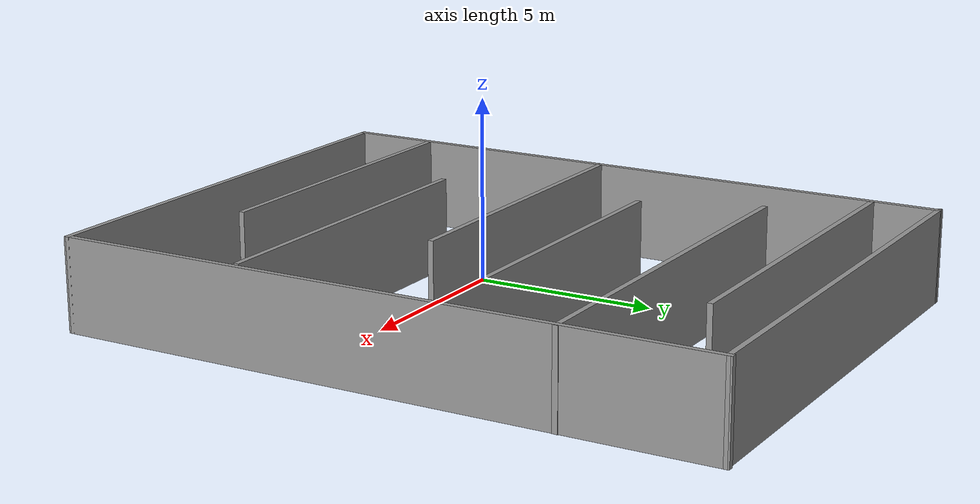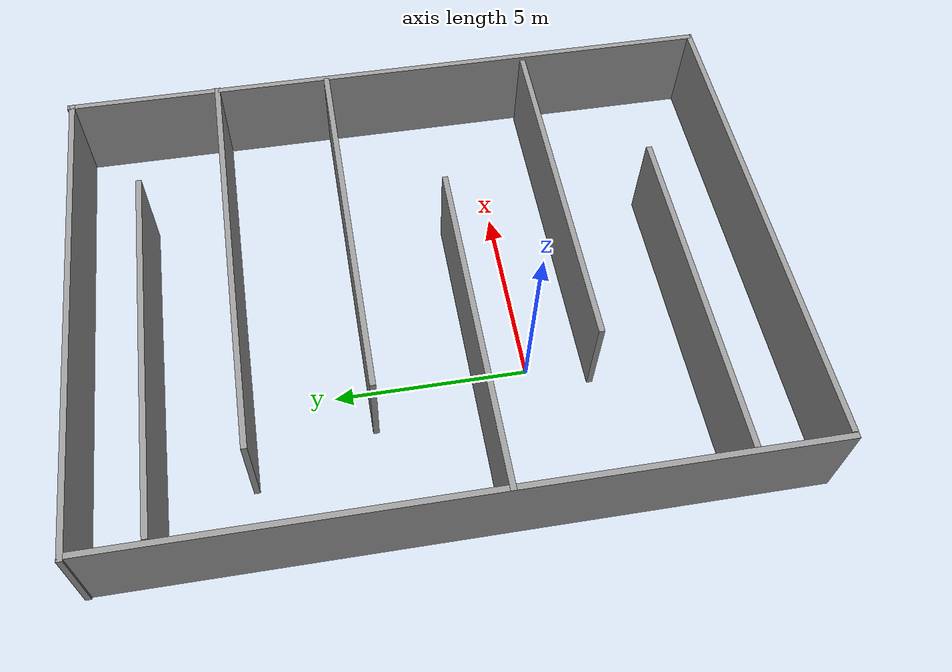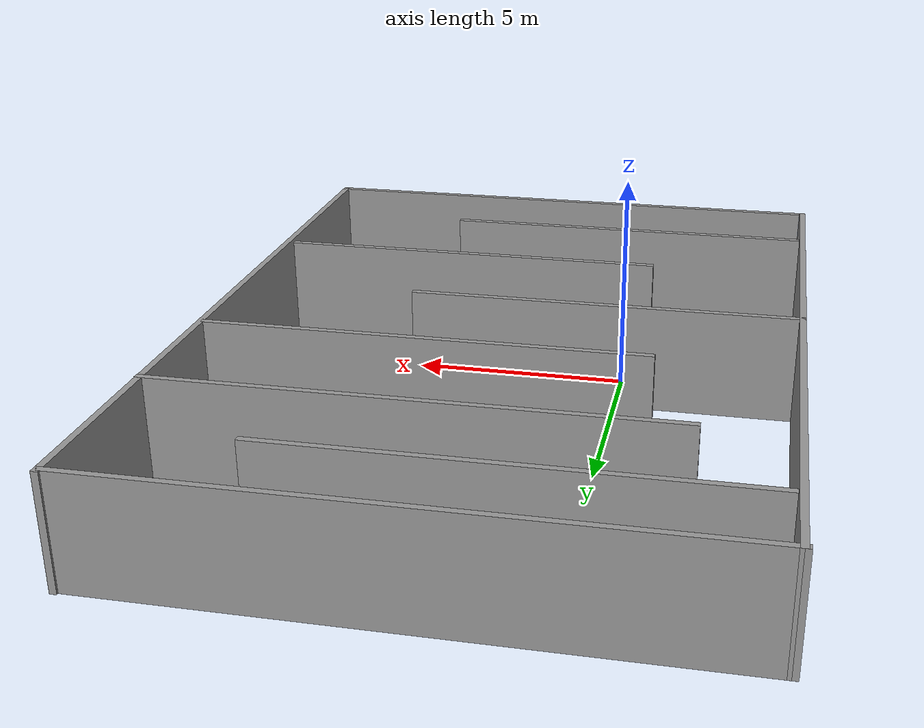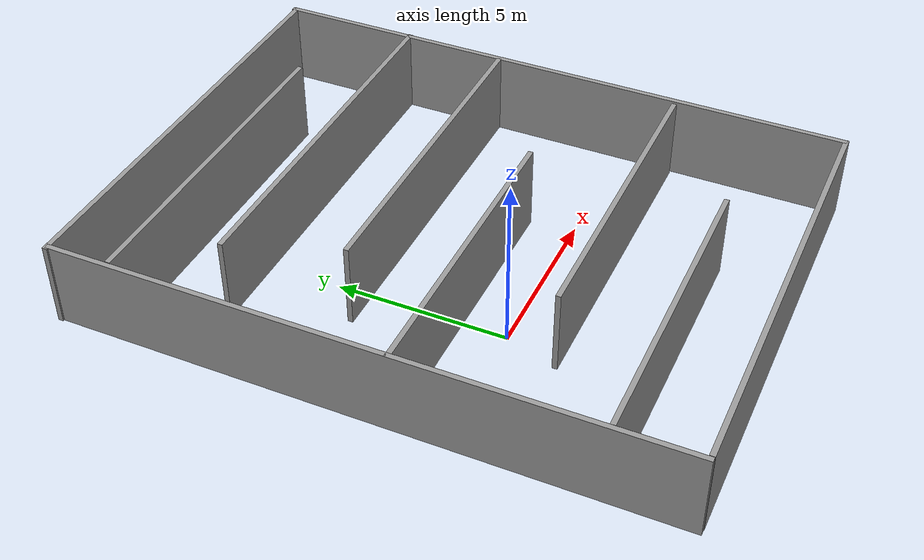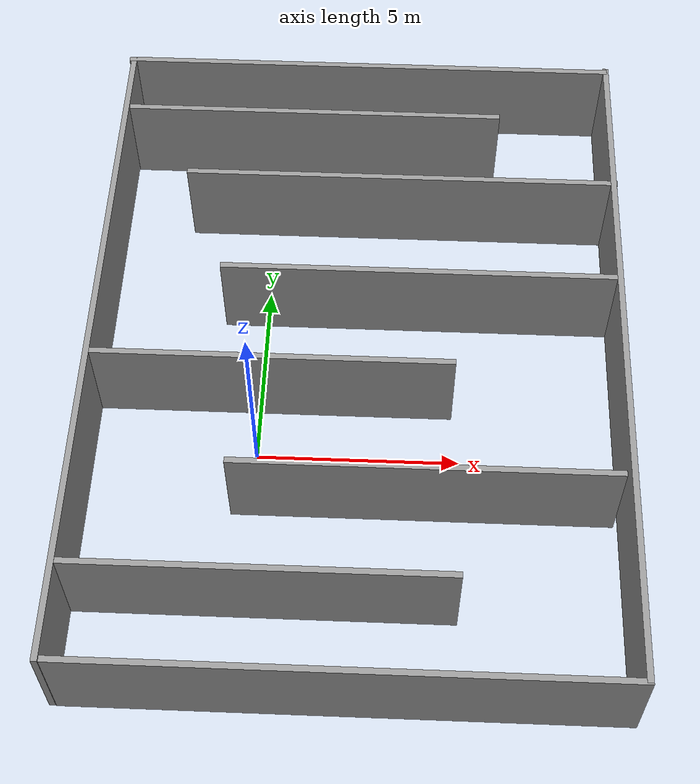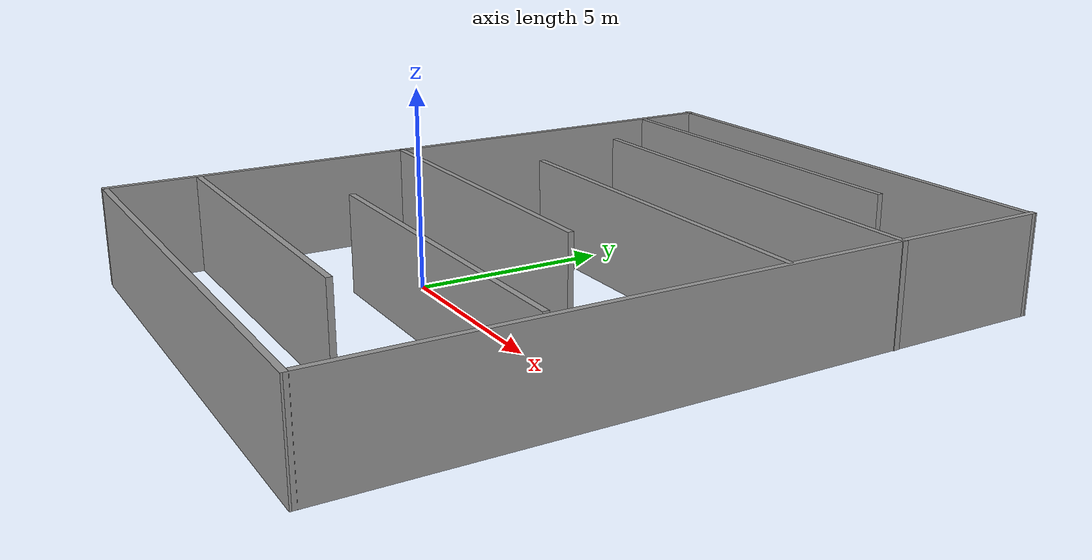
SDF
<?xml version='1.0'?>
<sdf version='1.6'>
  <model name='MazeTest'>
    <pose frame=''>2.36027 2.32771 0 0 -0 0</pose>
    <link name='Wall_0'>
      <collision name='Wall_0_Collision'>
        <geometry>
          <box>
            <size>17.8681 0.15 2.5</size>
          </box>
        </geometry>
        <pose frame=''>0 0 1.25 0 -0 0</pose>
      </collision>
      <visual name='Wall_0_Visual'>
        <pose frame=''>0 0 1.25 0 -0 0</pose>
        <geometry>
          <box>
            <size>17.8681 0.15 2.5</size>
          </box>
        </geometry>
        <material>
          <script>
            <uri>file://media/materials/scripts/gazebo.material</uri>
            <name>Gazebo/Grey</name>
          </script>
          <ambient>1 1 1 1</ambient>
        </material>
        <meta>
          <layer>0</layer>
        </meta>
      </visual>
      <pose frame=''>-6.48674 -0.018692 0 0 -0 1.57304</pose>
    </link>
    <link name='Wall_1'>
      <collision name='Wall_1_Collision'>
        <geometry>
          <box>
            <size>13.2343 0.15 2.5</size>
          </box>
        </geometry>
        <pose frame=''>0 0 1.25 0 -0 0</pose>
      </collision>
      <visual name='Wall_1_Visual'>
        <pose frame=''>0 0 1.25 0 -0 0</pose>
        <geometry>
          <box>
            <size>13.2343 0.15 2.5</size>
          </box>
        </geometry>
        <material>
          <script>
            <uri>file://media/materials/scripts/gazebo.material</uri>
            <name>Gazebo/Grey</name>
          </script>
          <ambient>1 1 1 1</ambient>
        </material>
        <meta>
          <layer>0</layer>
        </meta>
      </visual>
      <pose frame=''>-0.011001 8.84033 0 0 -0 0</pose>
    </link>
    <link name='Wall_10'>
      <collision name='Wall_10_Collision'>
        <geometry>
          <box>
            <size>9 0.15 2.5</size>
          </box>
        </geometry>
        <pose frame=''>0 0 1.25 0 -0 0</pose>
      </collision>
      <visual name='Wall_10_Visual'>
        <pose frame=''>0 0 1.25 0 -0 0</pose>
        <geometry>
          <box>
            <size>9 0.15 2.5</size>
          </box>
        </geometry>
        <material>
          <script>
            <uri>file://media/materials/scripts/gazebo.material</uri>
            <name>Gazebo/Grey</name>
          </script>
          <ambient>1 1 1 1</ambient>
        </material>
        <meta>
          <layer>0</layer>
        </meta>
      </visual>
      <pose frame=''>-2.05727 -0.960299 0 0 -0 0</pose>
    </link>
    <link name='Wall_15'>
      <collision name='Wall_15_Collision'>
        <geometry>
          <box>
            <size>10 0.15 2.5</size>
          </box>
        </geometry>
        <pose frame=''>0 0 1.25 0 -0 0</pose>
      </collision>
      <visual name='Wall_15_Visual'>
        <pose frame=''>0 0 1.25 0 -0 0</pose>
        <geometry>
          <box>
            <size>10 0.15 2.5</size>
          </box>
        </geometry>
        <material>
          <script>
            <uri>file://media/materials/scripts/gazebo.material</uri>
            <name>Gazebo/Grey</name>
          </script>
          <ambient>1 1 1 1</ambient>
        </material>
        <meta>
          <layer>0</layer>
        </meta>
      </visual>
      <pose frame=''>1.52361 1.7517 0 0 -0 0</pose>
    </link>
    <link name='Wall_17'>
      <collision name='Wall_17_Collision'>
        <geometry>
          <box>
            <size>11.25 0.15 2.5</size>
          </box>
        </geometry>
        <pose frame=''>0 0 1.25 0 -0 0</pose>
      </collision>
      <visual name='Wall_17_Visual'>
        <pose frame=''>0 0 1.25 0 -0 0</pose>
        <geometry>
          <box>
            <size>11.25 0.15 2.5</size>
          </box>
        </geometry>
        <material>
          <script>
            <uri>file://media/materials/scripts/gazebo.material</uri>
            <name>Gazebo/Grey</name>
          </script>
          <ambient>1 1 1 1</ambient>
        </material>
        <meta>
          <layer>0</layer>
        </meta>
      </visual>
      <pose frame=''>1.00314 4.82228 0 0 -0 3.14159</pose>
    </link>
    <link name='Wall_19'>
      <collision name='Wall_19_Collision'>
        <geometry>
          <box>
            <size>10 0.15 2.5</size>
          </box>
        </geometry>
        <pose frame=''>0 0 1.25 0 -0 0</pose>
      </collision>
      <visual name='Wall_19_Visual'>
        <pose frame=''>0 0 1.25 0 -0 0</pose>
        <geometry>
          <box>
            <size>10 0.15 2.5</size>
          </box>
        </geometry>
        <material>
          <script>
            <uri>file://media/materials/scripts/gazebo.material</uri>
            <name>Gazebo/Grey</name>
          </script>
          <ambient>1 1 1 1</ambient>
        </material>
        <meta>
          <layer>0</layer>
        </meta>
      </visual>
      <pose frame=''>-1.40739 7.05542 0 0 -0 0</pose>
    </link>
    <link name='Wall_2'>
      <collision name='Wall_2_Collision'>
        <geometry>
          <box>
            <size>17.8773 0.15 2.5</size>
          </box>
        </geometry>
        <pose frame=''>0 0 1.25 0 -0 0</pose>
      </collision>
      <visual name='Wall_2_Visual'>
        <pose frame=''>0 0 1.25 0 -0 0</pose>
        <geometry>
          <box>
            <size>17.8773 0.15 2.5</size>
          </box>
        </geometry>
        <material>
          <script>
            <uri>file://media/materials/scripts/gazebo.material</uri>
            <name>Gazebo/Grey</name>
          </script>
          <ambient>1 1 1 1</ambient>
        </material>
        <meta>
          <layer>0</layer>
        </meta>
      </visual>
      <pose frame=''>6.53938 0.023227 0 0 -0 -1.56986</pose>
    </link>
    <link name='Wall_3'>
      <collision name='Wall_3_Collision'>
        <geometry>
          <box>
            <size>13 0.15 2.5</size>
          </box>
        </geometry>
        <pose frame=''>0 0 1.25 0 -0 0</pose>
      </collision>
      <visual name='Wall_3_Visual'>
        <pose frame=''>0 0 1.25 0 -0 0</pose>
        <geometry>
          <box>
            <size>13 0.15 2.5</size>
          </box>
        </geometry>
        <material>
          <script>
            <uri>file://media/materials/scripts/gazebo.material</uri>
            <name>Gazebo/Grey</name>
          </script>
          <ambient>1 1 1 1</ambient>
        </material>
        <meta>
          <layer>0</layer>
        </meta>
      </visual>
      <pose frame=''>0.122656 -8.88692 0 0 -0 3.14159</pose>
    </link>
    <link name='Wall_6'>
      <collision name='Wall_6_Collision'>
        <geometry>
          <box>
            <size>9 0.15 2.5</size>
          </box>
        </geometry>
        <pose frame=''>0 0 1.25 0 -0 0</pose>
      </collision>
      <visual name='Wall_6_Visual'>
        <pose frame=''>0 0 1.25 0 -0 0</pose>
        <geometry>
          <box>
            <size>9 0.15 2.5</size>
          </box>
        </geometry>
        <material>
          <script>
            <uri>file://media/materials/scripts/gazebo.material</uri>
            <name>Gazebo/Grey</name>
          </script>
          <ambient>1 1 1 1</ambient>
        </material>
        <meta>
          <layer>0</layer>
        </meta>
      </visual>
      <pose frame=''>-1.89448 -6.57756 0 0 -0 0</pose>
    </link>
    <link name='Wall_8'>
      <collision name='Wall_8_Collision'>
        <geometry>
          <box>
            <size>9.25 0.15 2.5</size>
          </box>
        </geometry>
        <pose frame=''>0 0 1.25 0 -0 0</pose>
      </collision>
      <visual name='Wall_8_Visual'>
        <pose frame=''>0 0 1.25 0 -0 0</pose>
        <geometry>
          <box>
            <size>9.25 0.15 2.5</size>
          </box>
        </geometry>
        <material>
          <script>
            <uri>file://media/materials/scripts/gazebo.material</uri>
            <name>Gazebo/Grey</name>
          </script>
          <ambient>1 1 1 1</ambient>
        </material>
        <meta>
          <layer>0</layer>
        </meta>
      </visual>
      <pose frame=''>1.74038 -3.88014 0 0 -0 3.14159</pose>
    </link>
    <static>1</static>
  </model>
</sdf>
